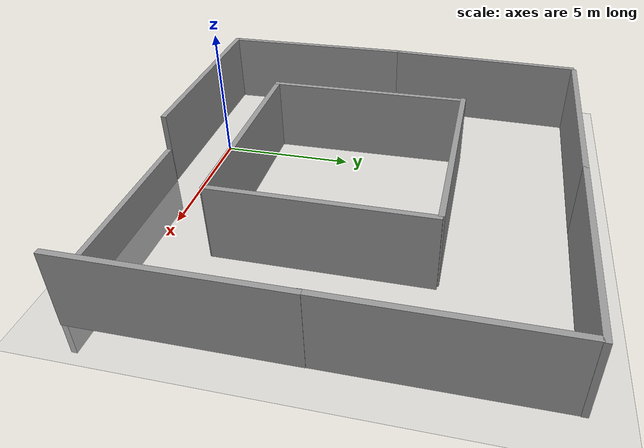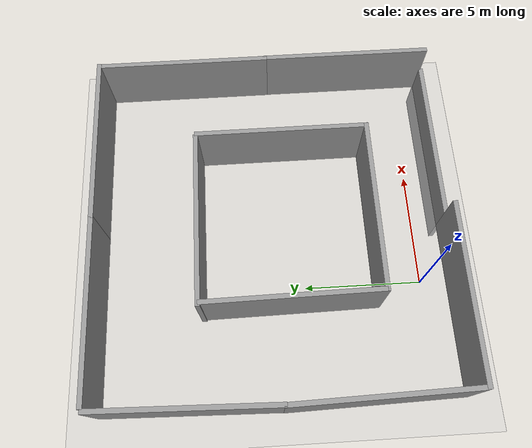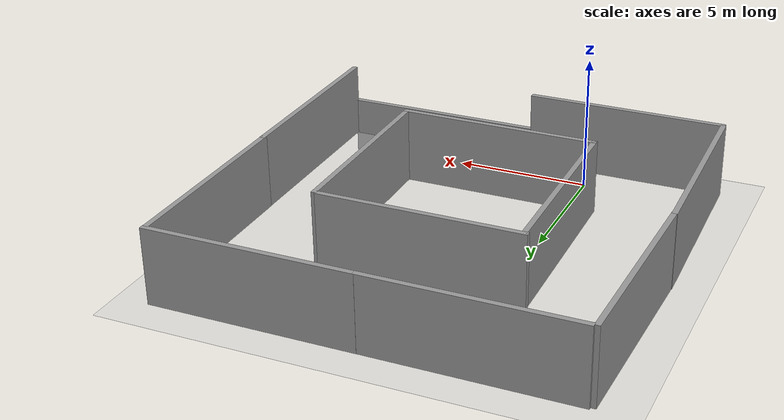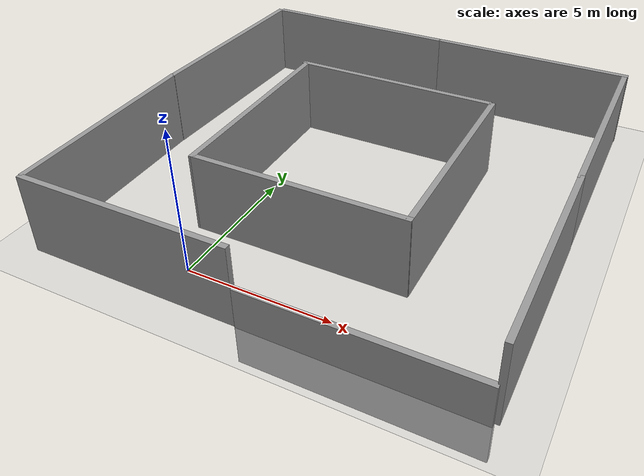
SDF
<sdf version="1.7">
 <world name="default">
  <light name="sun" type="directional">
   <pose>0 0 10 0 -0 0</pose>
   <diffuse>0.8 0.8 0.8 1</diffuse>
   <specular>0.2 0.2 0.2 1</specular>
   <attenuation>
    <range>1000</range>
    <constant>0.9</constant>
    <linear>0.01</linear>
    <quadratic>0.001</quadratic>
   </attenuation>
   <direction>-0.5 0.1 -0.9</direction>
   <spot><inner_angle>0</inner_angle><outer_angle>0</outer_angle><falloff>0</falloff></spot>
  </light>
  <model name="ground_plane">
   <static>1</static>
   <link name="link">
    <collision name="collision">
     <geometry><plane><normal>0 0 1</normal><size>100 100</size></plane></geometry>
     <surface>
      <contact><collide_bitmask>65535</collide_bitmask></contact>
      <friction><ode><mu>100</mu><mu2>50</mu2></ode></friction>
     </surface>
    </collision>
    <visual name="visual">
     <cast_shadows>0</cast_shadows>
     <geometry><plane><normal>0 0 1</normal><size>100 100</size></plane></geometry>
     <material>
      <script><uri>file://media/materials/scripts/gazebo.material</uri><name>Gazebo/Grey</name></script>
     </material>
    </visual>
   </link>
  </model>
  <gravity>0 0 -9.8</gravity>
  <magnetic_field>6e-06 2.3e-05 -4.2e-05</magnetic_field>
  <atmosphere type="adiabatic"/>
  <physics type="ode">
   <max_step_size>0.001</max_step_size>
   <real_time_factor>1</real_time_factor>
   <real_time_update_rate>1000</real_time_update_rate>
  </physics>
  <scene><ambient>0.4 0.4 0.4 1</ambient><background>0.7 0.7 0.7 1</background><shadows>1</shadows></scene>
  <spherical_coordinates>
   <surface_model>EARTH_WGS84</surface_model>
   <latitude_deg>0</latitude_deg>
   <longitude_deg>0</longitude_deg>
   <elevation>0</elevation>
   <heading_deg>0</heading_deg>
  </spherical_coordinates>
  <model name="grey_wall">
   <static>1</static>
   <link name="link">
    <pose>0 0 1.4 0 -0 0</pose>
    <collision name="collision"><geometry><box><size>7.5 0.2 2.8</size></box></geometry></collision>
    <visual name="visual">
     <cast_shadows>0</cast_shadows>
     <geometry><box><size>7.5 0.2 2.8</size></box></geometry>
     <material>
      <script>
       <uri>model://grey_wall/materials/scripts</uri>
       <uri>model://grey_wall/materials/textures</uri>
       <name>vrc/grey_wall</name>
      </script>
     </material>
    </visual>
   </link>
   <pose>2.73981 2.0007 -0 0 -0 0</pose>
  </model>
  <model name="grey_wall_0">
   <static>1</static>
   <link name="link">
    <pose>0 0 1.4 0 -0 0</pose>
    <collision name="collision"><geometry><box><size>7.5 0.2 2.8</size></box></geometry></collision>
    <visual name="visual">
     <cast_shadows>0</cast_shadows>
     <geometry><box><size>7.5 0.2 2.8</size></box></geometry>
     <material>
      <script>
       <uri>model://grey_wall/materials/scripts</uri>
       <uri>model://grey_wall/materials/textures</uri>
       <name>vrc/grey_wall</name>
      </script>
     </material>
    </visual>
   </link>
   <pose>-1.13512 -1.23272 -0 0 -0 0</pose>
  </model>
  <model name="grey_wall_1">
   <static>1</static>
   <link name="link">
    <collision name="collision"><geometry><box><size>7.5 0.2 2.8</size></box></geometry></collision>
    <visual name="visual">
     <cast_shadows>0</cast_shadows>
     <geometry><box><size>7.5 0.2 2.8</size></box></geometry>
     <material>
      <script>
       <uri>model://grey_wall/materials/scripts</uri>
       <uri>model://grey_wall/materials/textures</uri>
       <name>vrc/grey_wall</name>
      </script>
     </material>
    </visual>
   </link>
   <pose>6.37146 -1.24459 -0 0 -0 0</pose>
  </model>
  <model name="grey_wall_2">
   <static>1</static>
   <link name="link">
    <pose>0 0 1.4 0 -0 0</pose>
    <collision name="collision"><geometry><box><size>7.5 0.2 2.8</size></box></geometry></collision>
    <visual name="visual">
     <cast_shadows>0</cast_shadows>
     <geometry><box><size>7.5 0.2 2.8</size></box></geometry>
     <material>
      <script>
       <uri>model://grey_wall/materials/scripts</uri>
       <uri>model://grey_wall/materials/textures</uri>
       <name>vrc/grey_wall</name>
      </script>
     </material>
    </visual>
   </link>
   <pose>10.156 2.53073 0 0 0 -1.56753</pose>
  </model>
  <model name="grey_wall_3">
   <static>1</static>
   <link name="link">
    <pose>0 0 1.4 0 -0 0</pose>
    <collision name="collision"><geometry><box><size>7.5 0.2 2.8</size></box></geometry></collision>
    <visual name="visual">
     <cast_shadows>0</cast_shadows>
     <geometry><box><size>7.5 0.2 2.8</size></box></geometry>
     <material>
      <script>
       <uri>model://grey_wall/materials/scripts</uri>
       <uri>model://grey_wall/materials/textures</uri>
       <name>vrc/grey_wall</name>
      </script>
     </material>
    </visual>
   </link>
   <pose>6.38417 5.68854 0 0 0 -1.56703</pose>
  </model>
  <model name="grey_wall_4">
   <static>1</static>
   <link name="link">
    <pose>0 0 1.4 0 -0 0</pose>
    <collision name="collision"><geometry><box><size>7.5 0.2 2.8</size></box></geometry></collision>
    <visual name="visual">
     <cast_shadows>0</cast_shadows>
     <geometry><box><size>7.5 0.2 2.8</size></box></geometry>
     <material>
      <script>
       <uri>model://grey_wall/materials/scripts</uri>
       <uri>model://grey_wall/materials/textures</uri>
       <name>vrc/grey_wall</name>
      </script>
     </material>
    </visual>
   </link>
   <pose>6.47534 13.6769 0 0 -0 0</pose>
  </model>
  <model name="grey_wall_5">
   <static>1</static>
   <link name="link">
    <pose>0 0 1.4 0 -0 0</pose>
    <collision name="collision"><geometry><box><size>7.5 0.2 2.8</size></box></geometry></collision>
    <visual name="visual">
     <cast_shadows>0</cast_shadows>
     <geometry><box><size>7.5 0.2 2.8</size></box></geometry>
     <material>
      <script>
       <uri>model://grey_wall/materials/scripts</uri>
       <uri>model://grey_wall/materials/textures</uri>
       <name>vrc/grey_wall</name>
      </script>
     </material>
    </visual>
   </link>
   <pose>10.1218 9.86664 -0 0 0 -1.56767</pose>
  </model>
  <model name="grey_wall_6">
   <static>1</static>
   <link name="link">
    <pose>0 0 1.4 0 -0 0</pose>
    <collision name="collision"><geometry><box><size>7.5 0.2 2.8</size></box></geometry></collision>
    <visual name="visual">
     <cast_shadows>0</cast_shadows>
     <geometry><box><size>7.5 0.2 2.8</size></box></geometry>
     <material>
      <script>
       <uri>model://grey_wall/materials/scripts</uri>
       <uri>model://grey_wall/materials/textures</uri>
       <name>vrc/grey_wall</name>
      </script>
     </material>
    </visual>
   </link>
   <pose>2.57377 9.38967 -0 0 -0 0</pose>
  </model>
  <model name="grey_wall_8">
   <static>1</static>
   <link name="link">
    <pose>0 0 1.4 0 -0 0</pose>
    <collision name="collision"><geometry><box><size>7.5 0.2 2.8</size></box></geometry></collision>
    <visual name="visual">
     <cast_shadows>0</cast_shadows>
     <geometry><box><size>7.5 0.2 2.8</size></box></geometry>
     <material>
      <script>
       <uri>model://grey_wall/materials/scripts</uri>
       <uri>model://grey_wall/materials/textures</uri>
       <name>vrc/grey_wall</name>
      </script>
     </material>
    </visual>
   </link>
   <pose>-0.969087 5.6507 0 0 -0 1.58541</pose>
  </model>
  <model name="grey_wall_9">
   <static>1</static>
   <link name="link">
    <pose>0 0 1.4 0 -0 0</pose>
    <collision name="collision"><geometry><box><size>7.5 0.2 2.8</size></box></geometry></collision>
    <visual name="visual">
     <cast_shadows>0</cast_shadows>
     <geometry><box><size>7.5 0.2 2.8</size></box></geometry>
     <material>
      <script>
       <uri>model://grey_wall/materials/scripts</uri>
       <uri>model://grey_wall/materials/textures</uri>
       <name>vrc/grey_wall</name>
      </script>
     </material>
    </visual>
   </link>
   <pose>-4.9086 2.53782 0 0 0 -1.54589</pose>
  </model>
  <model name="grey_wall_14">
   <static>1</static>
   <link name="link">
    <pose>0 0 1.4 0 -0 0</pose>
    <collision name="collision"><geometry><box><size>7.5 0.2 2.8</size></box></geometry></collision>
    <visual name="visual">
     <cast_shadows>0</cast_shadows>
     <geometry><box><size>7.5 0.2 2.8</size></box></geometry>
     <material>
      <script>
       <uri>model://grey_wall/materials/scripts</uri>
       <uri>model://grey_wall/materials/textures</uri>
       <name>vrc/grey_wall</name>
      </script>
     </material>
    </visual>
   </link>
   <pose>-0.970971 13.6733 -0 0 -0 0</pose>
  </model>
  <model name="grey_wall_15">
   <static>1</static>
   <link name="link">
    <pose>0 0 1.4 0 -0 0</pose>
    <collision name="collision"><geometry><box><size>7.5 0.2 2.8</size></box></geometry></collision>
    <visual name="visual">
     <cast_shadows>0</cast_shadows>
     <geometry><box><size>7.5 0.2 2.8</size></box></geometry>
     <material>
      <script>
       <uri>model://grey_wall/materials/scripts</uri>
       <uri>model://grey_wall/materials/textures</uri>
       <name>vrc/grey_wall</name>
      </script>
     </material>
    </visual>
   </link>
   <pose>-4.89108 9.9344 -0 0 0 -1.59653</pose>
  </model>
 </world>
</sdf>
